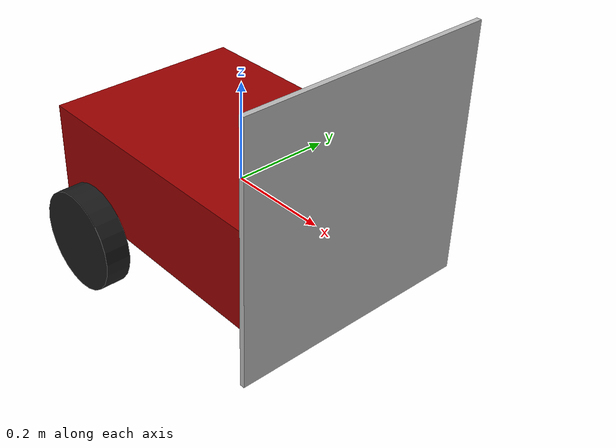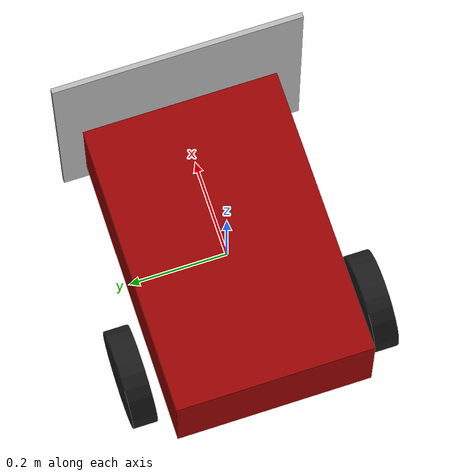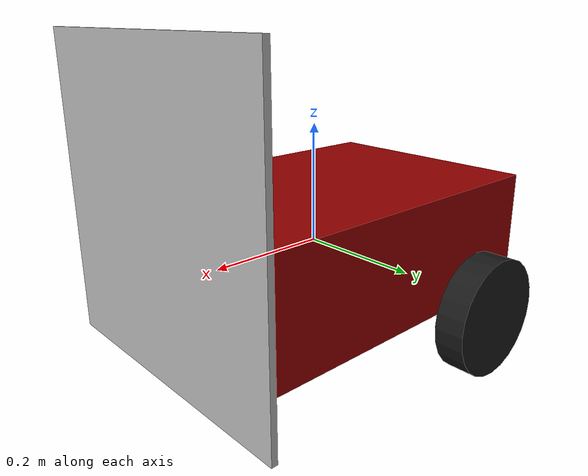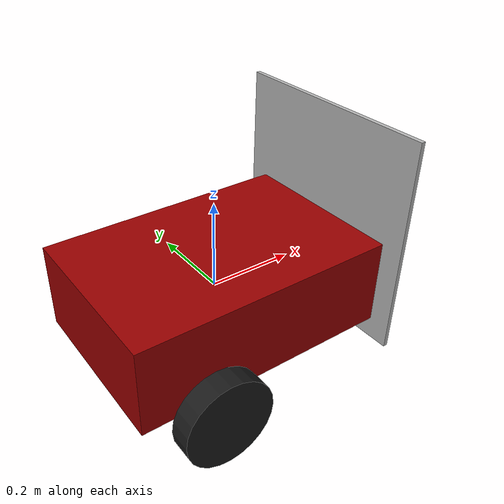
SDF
<?xml version="1.0" ?>
<sdf version="1.6">
  <model name="aruco_bot">
    <static>false</static>

    <!-- Base Link -->
    <link name="aruco_base_link">
      <pose>0 0 0 0 0 3.1416</pose>
      <inertial>
        <mass>5.0</mass>
        <inertia>
          <ixx>0.1</ixx>
          <iyy>0.1</iyy>
          <izz>0.1</izz>
          <ixy>0.0</ixy>
          <ixz>0.0</ixz>
          <iyz>0.0</iyz>
        </inertia>
      </inertial>

      <!-- Visual -->
      <visual name="base_visual">
        <geometry>
          <box>
            <size>0.6 0.4 0.2</size>
          </box>
        </geometry>
        <material>
          <ambient>0.6 0 0 1</ambient>
          <diffuse>0.6 0 0 1</diffuse>
        </material>
      </visual>

      <!-- Collision -->
      <collision name="base_collision">
        <geometry>
          <box>
            <size>0.6 0.4 0.2</size>
          </box>
        </geometry>
      </collision>
    </link>

    <!-- ArUco Marker Panel -->
    <link name="aruco_marker_panel">
      <pose>0.3 0 0.1 0 0 0</pose>

      <visual name="marker_visual">
        <geometry>
          <box>
            <size>0.01 0.5 0.5</size>
          </box>
        </geometry>
        <material>
          <script>
            <uri>model://aruco_marker/materials/scripts</uri>
            <uri>model://aruco_marker/materials/textures</uri>
            <name>MyGroundPlane/Image</name>
          </script>
        </material>
      </visual>

      <collision name="marker_collision">
        <geometry>
          <box>
            <size>0.01 0.5 0.5</size>
          </box>
        </geometry>
      </collision>

      <inertial>
        <mass>0.01</mass>
        <inertia>
          <ixx>0.0001</ixx>
          <iyy>0.0001</iyy>
          <izz>0.0001</izz>
          <ixy>0.0</ixy>
          <ixz>0.0</ixz>
          <iyz>0.0</iyz>
        </inertia>
      </inertial>
    </link>

    <!-- Left Wheel -->
    <link name="aruco_left_wheel">
      <pose>-0.15 0.25 -0.1 1.57 0 3.141</pose>
      <visual name="left_wheel_visual">
        <geometry>
          <cylinder>
            <radius>0.1</radius>
            <length>0.05</length>
          </cylinder>
        </geometry>
        <material>
          <ambient>0.1 0.1 0.1 1</ambient>
          <diffuse>0.1 0.1 0.1 1</diffuse>
        </material>
      </visual>
      <collision name="left_wheel_collision">
        <geometry>
          <cylinder>
            <radius>0.1</radius>
            <length>0.05</length>
          </cylinder>
        </geometry>
      </collision>
      <inertial>
        <mass>0.5</mass>
        <inertia>
          <ixx>0.1</ixx>
          <iyy>0.1</iyy>
          <izz>0.1</izz>
          <ixy>0.0</ixy>
          <ixz>0.0</ixz>
          <iyz>0.0</iyz>
        </inertia>
      </inertial>
      <surface>
        <friction>
          <ode>
            <mu>0.5</mu>
            <mu2>0.5</mu2>
          </ode>
        </friction>
      </surface>
    </link>

    <!-- Right Wheel -->
    <link name="aruco_right_wheel">
      <pose>-0.15 -0.25 -0.1 1.57 0 3.141</pose>
      <visual name="right_wheel_visual">
        <geometry>
          <cylinder>
            <radius>0.1</radius>
            <length>0.05</length>
          </cylinder>
        </geometry>
        <material>
          <ambient>0.1 0.1 0.1 1</ambient>
          <diffuse>0.1 0.1 0.1 1</diffuse>
        </material>
      </visual>
      <collision name="right_wheel_collision">
        <geometry>
          <cylinder>
            <radius>0.1</radius>
            <length>0.05</length>
          </cylinder>
        </geometry>
      </collision>
      <inertial>
        <mass>2.0</mass>
        <inertia>
          <ixx>0.1</ixx>
          <iyy>0.1</iyy>
          <izz>0.1</izz>
          <ixy>0.0</ixy>
          <ixz>0.0</ixz>
          <iyz>0.0</iyz>
        </inertia>
      </inertial>
      <surface>
        <friction>
          <ode>
            <mu>0.5</mu>
            <mu2>0.5</mu2>
          </ode>
        </friction>
      </surface>
    </link>

    <!-- Caster Wheel -->
    <link name="aruco_caster_wheel">
      <pose>0.15 0 -0.1 0 0 0</pose>
      <visual name="caster_visual">
        <geometry>
          <sphere>
            <radius>0.1</radius>
          </sphere>
        </geometry>
        <material>
          <ambient>0.5 0.5 0.5 1</ambient>
          <diffuse>0.5 0.5 0.5 1</diffuse>
        </material>
      </visual>
      <collision name="caster_collision">
        <geometry>
          <sphere>
            <radius>0.1</radius>
          </sphere>
        </geometry>
      </collision>
      <inertial>
        <mass>0.05</mass>
        <inertia>
          <ixx>0.1</ixx>
          <iyy>0.1</iyy>
          <izz>0.1</izz>
          <ixy>0.0</ixy>
          <ixz>0.0</ixz>
          <iyz>0.0</iyz>
        </inertia>
      </inertial>
      <surface>
        <friction>
          <ode>
            <mu>0</mu>
            <mu2>0</mu2>
          </ode>
        </friction>
      </surface>
    </link>

    <!-- Joints -->
    <joint name="left_wheel_joint" type="revolute">
      <parent>aruco_base_link</parent>
      <child>aruco_left_wheel</child>
      <axis>
        <xyz>0 0 1</xyz>
      </axis>
    </joint>

    <joint name="right_wheel_joint" type="revolute">
      <parent>aruco_base_link</parent>
      <child>aruco_right_wheel</child>
      <axis>
        <xyz>0 0 1</xyz>
      </axis>
    </joint>

    <joint name="caster_joint" type="fixed">
      <parent>aruco_base_link</parent>
      <child>aruco_caster_wheel</child>
    </joint>

    <joint name="marker_joint" type="fixed">
      <parent>aruco_base_link</parent>
      <child>aruco_marker_panel</child>
      <origin xyz="0.2 0.0 0"/>
    </joint>

    <!-- Diff Drive Plugin -->
    <plugin name="diff_drive_controller" filename="libgazebo_ros_diff_drive.so">
      <ros>
        <remapping>cmd_vel:=aruco/cmd_vel</remapping>
      </ros>
      <update_rate>50</update_rate>
      <left_joint>left_wheel_joint</left_joint>
      <right_joint>right_wheel_joint</right_joint>
      <wheel_separation>0.5</wheel_separation>
      <wheel_diameter>0.3</wheel_diameter>
      <use_sim_time>true</use_sim_time>
      <publish_odom>true</publish_odom>
      <publish_odom_tf>true</publish_odom_tf>
      <publish_wheel_tf>false</publish_wheel_tf>
      <max_wheel_acceleration>20</max_wheel_acceleration>
      <odometry_topic>aruco/odom</odometry_topic>
      <odometry_frame>odom</odometry_frame>
      <robot_base_frame>aruco_base_link</robot_base_frame>
    </plugin>

  </model>
</sdf>
